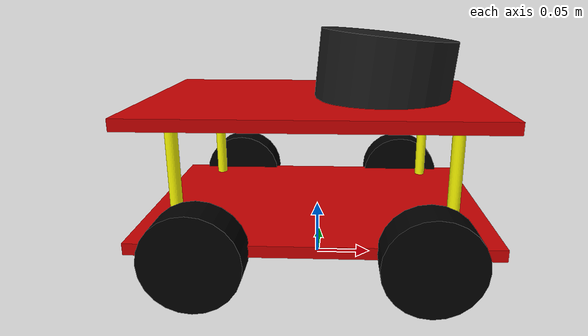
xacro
<?xml version="1.0"?>
<robot xmlns:xacro="http://www.ros.org/wiki/xacro" name="Elrobot">

<!-- Robot parameters -->
  <xacro:property name="body_length" value="0.3"/>  <!-- meters -->
  <xacro:property name="body_width"  value="0.2"/>
  <xacro:property name="body_height" value="0.01"/>
  <xacro:property name="wheel_radius" value="0.04"/>
  <xacro:property name="wheel_thickness" value="0.03"/>
  <xacro:property name="spacer_radius" value="0.005"/>
  <xacro:property name="spacer_thickness" value="0.1"/>
  <xacro:property name="lidar_radius" value="0.06"/>
  <xacro:property name="lidar_thickness" value="0.06"/>

<!-- Main body -->
  <link name="world"/>

  <!-- base -->
  <link name="base_link">
    <visual>
      <geometry>
        <box size="${body_length} ${body_width} ${body_height}"/>
      </geometry>
      <material name="red">
        <color rgba="0.8 0 0 1"/>
      </material>
    </visual>

    <collision>
      <geometry>
        <box size="${body_length} ${body_width} ${body_height}"/>
      </geometry>
    </collision>

    <inertial>
      <mass value="0.5"/>
      <inertia ixx="0.0017" iyy="0.00375" izz="0.0054" ixy="0" ixz="0" iyz="0"/>
    </inertial>
  </link>

  <joint name="world_to_base" type="fixed">
    <parent link="world"/>
    <child link="base_link"/>
    <origin xyz="0 0 0.05" rpy="0 0 0"/>
  </joint>

  <!-- upper -->
  <link name="upper_link">
    <visual>
      <geometry>
        <box size="${body_length} ${body_width} ${body_height}"/>
      </geometry>
      <material name="red">
        <color rgba="0.8 0 0 1"/>
      </material>
    </visual>

    <collision>
      <geometry>
        <box size="${body_length} ${body_width} ${body_height}"/>
      </geometry>
    </collision>

    <inertial>
      <mass value="0.5"/>
      <inertia ixx="0.0017" iyy="0.00375" izz="0.0054" ixy="0" ixz="0" iyz="0"/>
    </inertial>
  </link>

  <joint name="base_to_upper" type="fixed">
    <parent link="base_link"/>
    <child link="upper_link"/>
    <origin xyz="0 0 0.1" rpy="0 0 0"/>
  </joint>

  <!-- Wheel macro -->    <!-- macro is like a template -->
  <xacro:macro name="wheel" params="name x y z">
    <link name="${name}">
      <visual>
        <geometry>
          <cylinder radius="${wheel_radius}" length="${wheel_thickness}"/>
        </geometry>
        <material name="black">
          <color rgba="0 0 0 1"/>
        </material>
      </visual>

      <collision>
        <geometry>
          <cylinder radius="${wheel_radius}" length="${wheel_thickness}"/>
        </geometry>
      </collision>

      <inertial>
        <mass value="0.025"/> <!-- any values -->
        <inertia ixx="0.00002" iyy="0.00011" izz="0.00011" ixy="0" ixz="0" iyz="0"/>
      </inertial>
    </link>

    <joint name="${name}_joint" type="continuous">
      <parent link="base_link"/>
      <child link="${name}"/>
      <origin xyz="${x} ${y} ${z}" rpy="1.57 0 0"/>
      <axis xyz="0 0 1"/>
    </joint>
  </xacro:macro>

  <!-- Add four wheels -->
  <xacro:wheel name="fl_wheel"  x="0.09"  y="0.11"  z="0.0"/>
  <xacro:wheel name="fr_wheel"  x="0.09"  y="-0.11" z="0.0"/>
  <xacro:wheel name="bl_wheel"  x="-0.09" y="0.11"  z="0.0"/>
  <xacro:wheel name="br_wheel"  x="-0.09" y="-0.11" z="0.0"/>

  <!-- spacers macro -->
  <xacro:macro name="spacer" params="name x y z">
    <link name="${name}">
      <visual>
        <geometry>
          <cylinder radius="${spacer_radius}" length="${spacer_thickness}"/>
        </geometry>
        <material name="yellow">
          <color rgba="1 1 0 1"/>
        </material>
      </visual>

      <collision>
        <geometry>
          <cylinder radius="${spacer_radius}" length="${spacer_thickness}"/>
        </geometry>
      </collision>

      <inertial>
        <mass value="0.0125"/> <!-- any values -->
        <inertia ixx="0.000105" iyy="0.000105" izz="0" ixy="0" ixz="0" iyz="0"/>
      </inertial>
    </link>

    <joint name="${name}_joint" type="fixed">
      <parent link="base_link"/>
      <child link="${name}"/>
      <origin xyz="${x} ${y} ${z}" rpy="0 0 0"/>
    </joint>
  </xacro:macro>

  <!-- Add four spacers -->
  <xacro:spacer name="fl_spacer" x="0.11"  y="0.08"  z="0.05"/>
  <xacro:spacer name="fr_spacer" x="0.11"  y="-0.08" z="0.05"/>
  <xacro:spacer name="bl_spacer" x="-0.11" y="0.08"  z="0.05"/>
  <xacro:spacer name="br_spacer" x="-0.11" y="-0.08" z="0.05"/>

  <link name="lidar_link">
    <visual>
      <geometry>
        <cylinder radius="${lidar_radius}" length="${lidar_thickness}"/>
      </geometry>
      <material name="gary">
        <color rgba="0.1 0.1 0.1 1"/>
      </material>
    </visual>

    <collision>
      <geometry>
        <cylinder radius="${lidar_radius}" length="${lidar_thickness}"/>
      </geometry>
    </collision>

    <inertial>
      <mass value="0.05"/>
      <inertia ixx="0.000225" iyy="0.000225" izz="0.00009" ixy="0" ixz="0" iyz="0"/>
    </inertial>

  </link>

  <joint name="lidar_to_upper" type="fixed">
    <parent link="upper_link"/>
    <child link="lidar_link"/>
    <origin xyz="0.06 0 0.03" rpy="0 0.1 0"/>
  </joint>

</robot>
